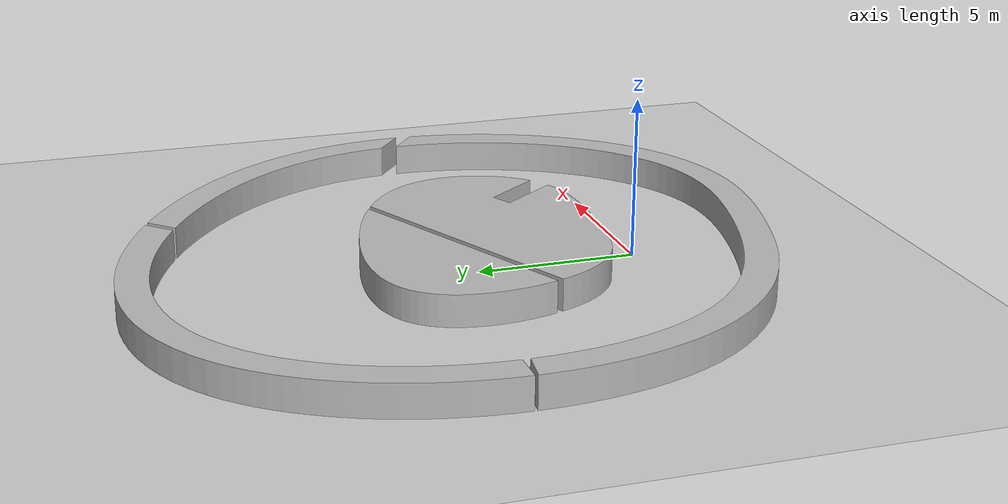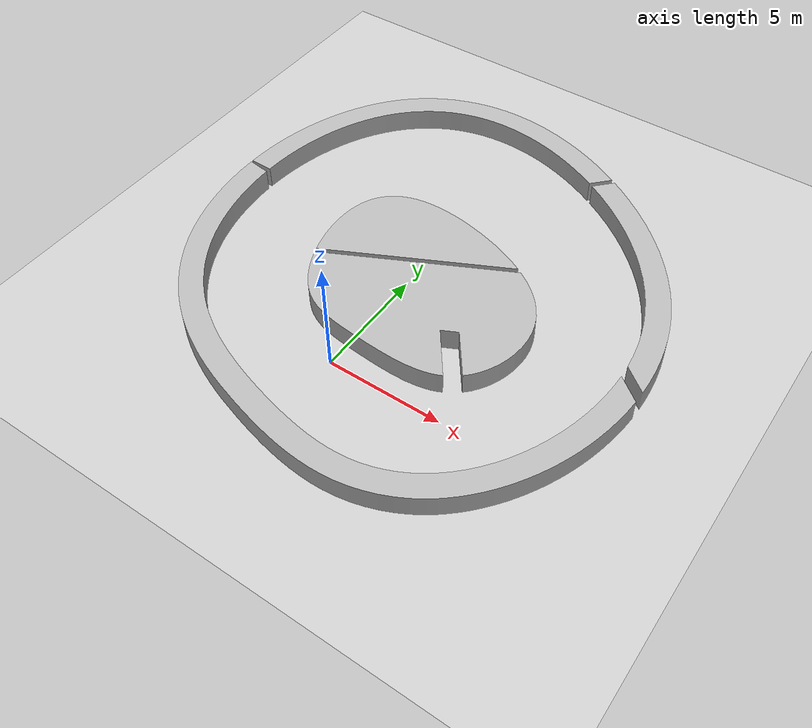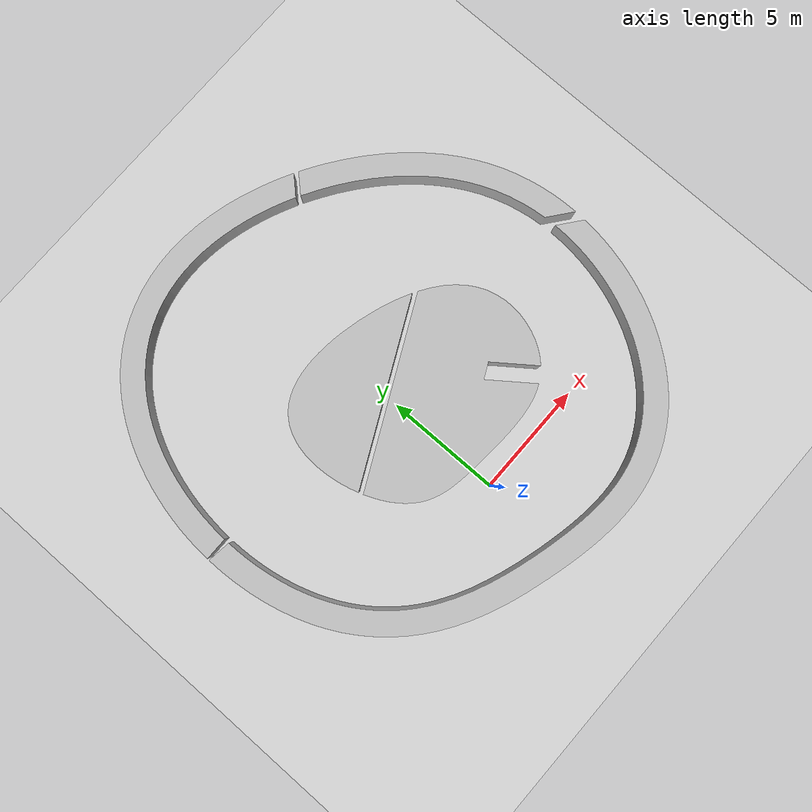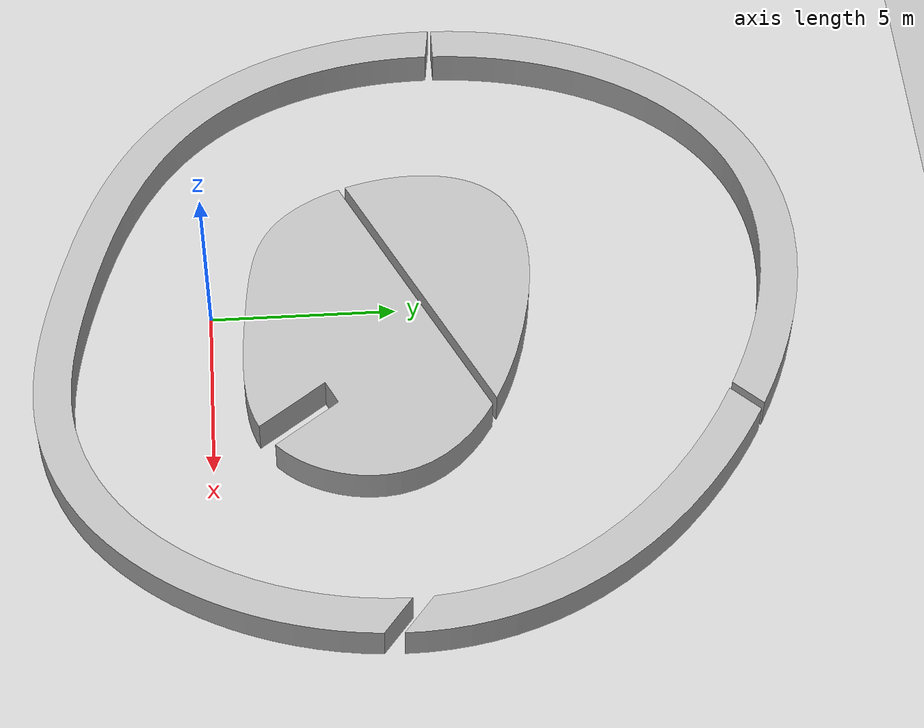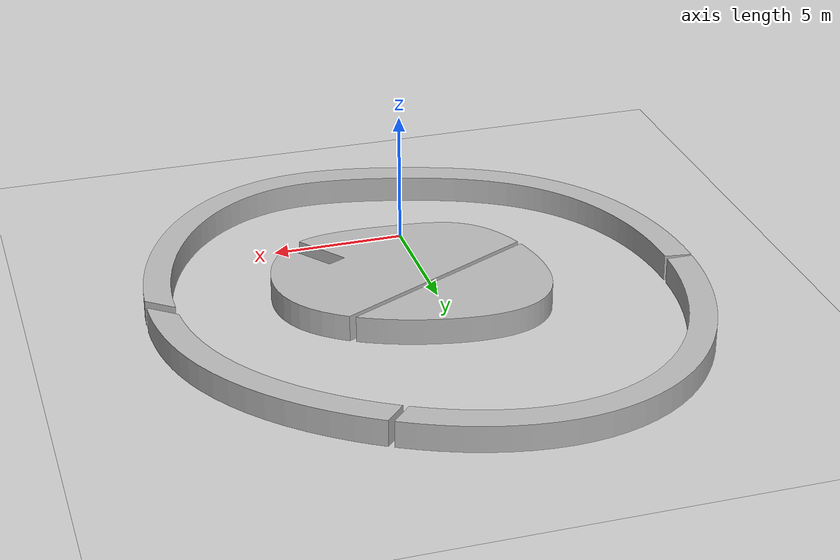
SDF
<?xml version="1.0"?>
<sdf version="1.4">
<world name="track_smooth_circle">

  <scene>
    <ambient>0.5 0.5 0.5 1.0</ambient>
    <shadows>0</shadows>
  </scene>

  <include>
    <uri>model://sun</uri>
    <pose>0.0 0.0 15.0 0 0 0</pose>
    <cast_shadows>false</cast_shadows>
    <attenuation>
      <constant>0.5</constant>
      <linear>0.01</linear>
      <quadratic>0.0</quadratic>
      <range>100</range>
    </attenuation>
  </include>

  <light type="point" name="Light 1">
              <pose>0 0 15 0 0 0</pose>
              <diffuse>.9 .9 .9 1</diffuse>
              <specular>.1 .1 .1 1</specular>
              <attenuation>
              <constant>0.5</constant>
              <linear>0.01</linear>
              <quadratic>0.0</quadratic>
              <range>50</range>
              </attenuation>
              <direction>0 0 -1</direction>
              <cast_shadows>false</cast_shadows>
  </light>

  <include>
    <uri>model://ground_plane</uri>
    <pose>0.0 0.0 0.0 0.0 0.0 0.0</pose>
  </include>

  <include>
    <uri>model://tbd_description/models/smooth_circle_track</uri>
    <!-- Line below this may need to be changed - not sure what the pose does-->
    <pose> 0.0 0.0 0.0 0.0 0.0 0.0</pose>
    <name>smooth_circle_track</name>
  </include>

</world>
</sdf>

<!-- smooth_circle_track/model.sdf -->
<sdf version='1.4'>
  <model name="smooth_circle_track">
    <link name="link">
      <collision name="collision">
        <geometry>
          <mesh>
            <uri>model://tbd_description/meshes/smooth_circle_track.stl</uri>
          </mesh>
        </geometry>
      </collision>
      <visual name="visual">
        <geometry>
          <mesh>
            <uri>model://tbd_description/meshes/smooth_circle_track.stl</uri>
          </mesh>
        </geometry>
      </visual>
    </link>
    <static>1</static>
  </model>
</sdf>
